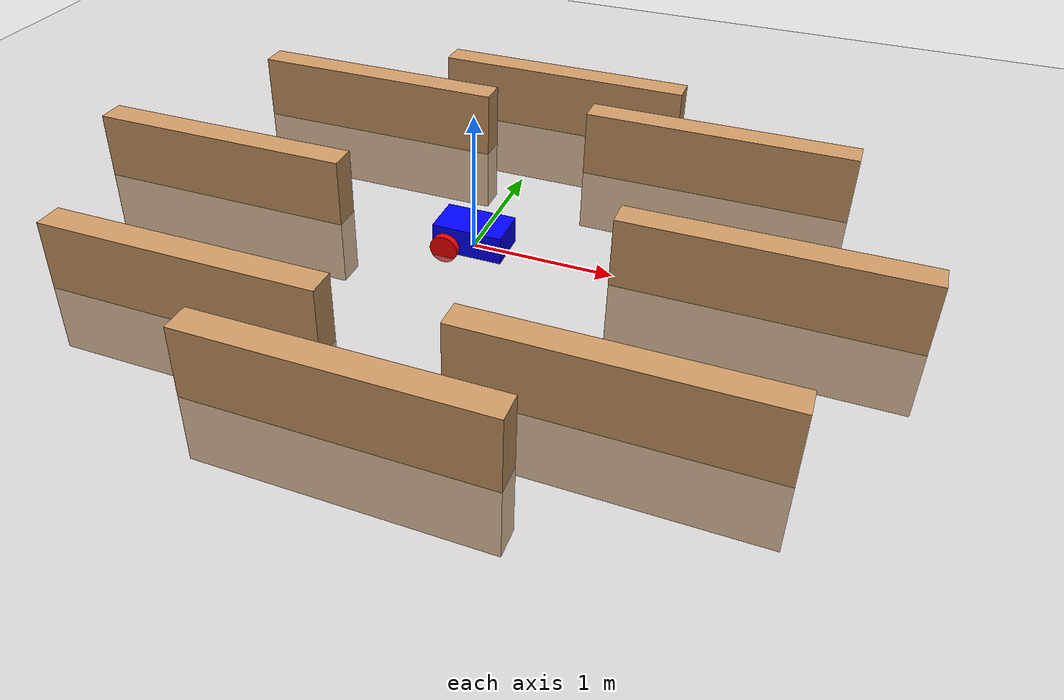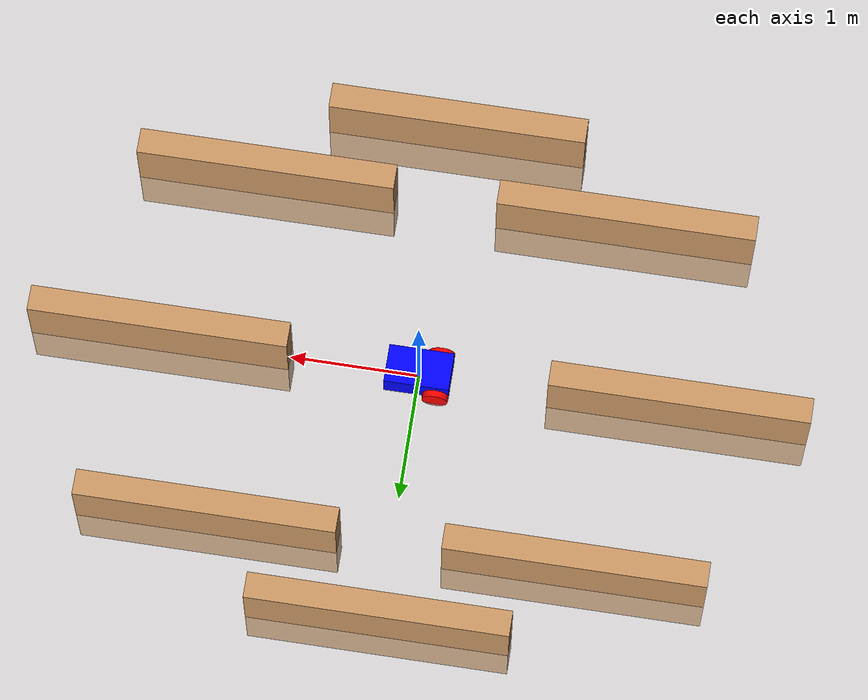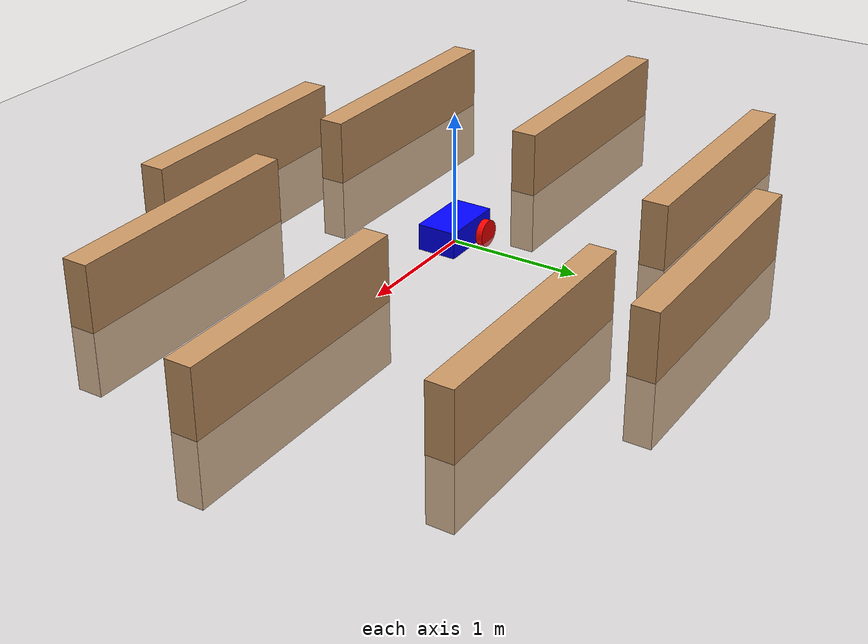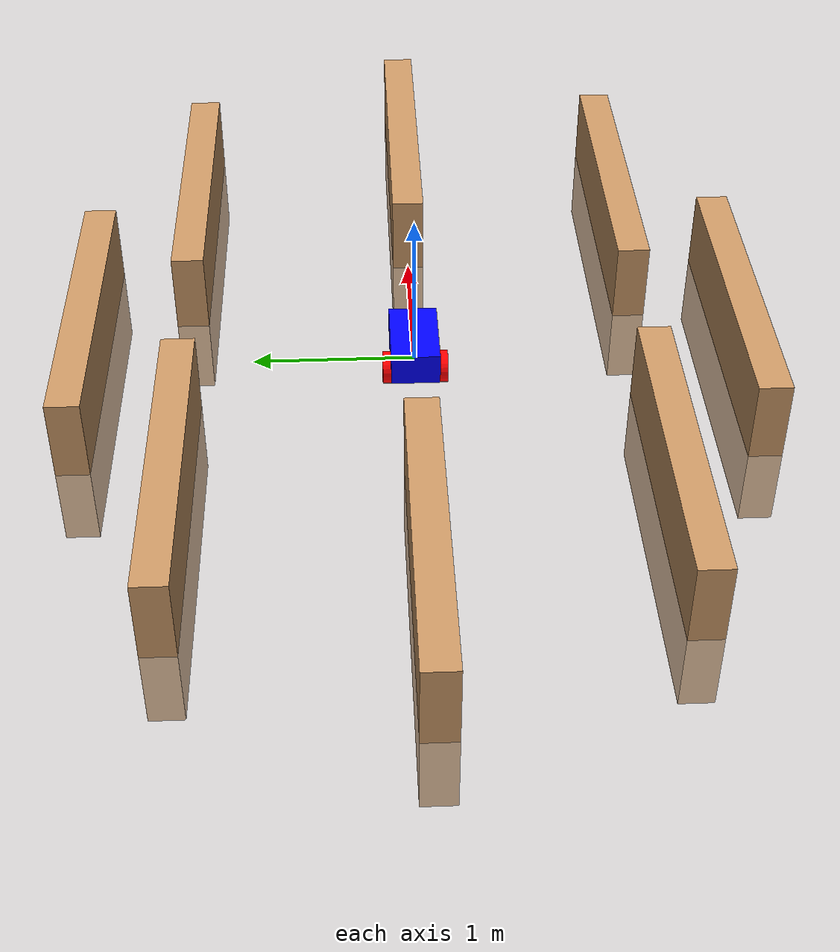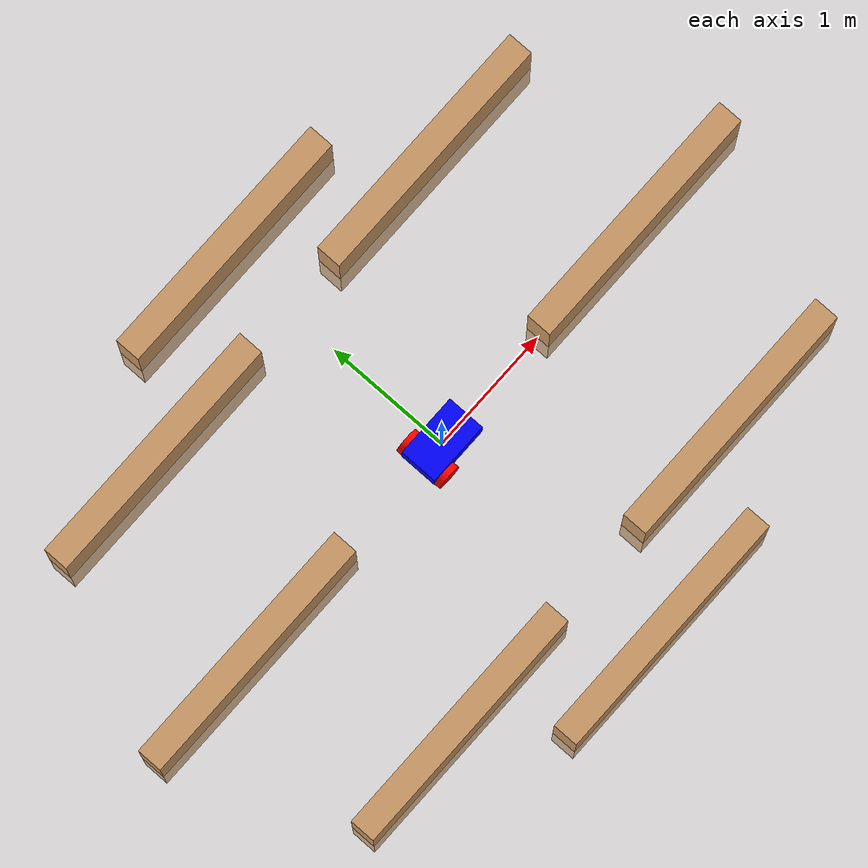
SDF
<?xml version="1.0"?>
<sdf version="1.6">

  <world name="default">
    <include>
      <uri>model://ground_plane</uri>
      <name>ground_plane</name>
      <pose>0 0 0 0 0 0</pose>
    </include>
  <include>
    <uri>model://simple_diff_bot</uri>
    <name>simple_diff_bot</name>
    <pose>0 0 0 0 0 0</pose>
  </include>
  <!-- Surrounding walls -->
  <include>
    <uri>model://wall</uri>
    <name>wall_north</name>
    <pose>0 2 0 0 0 0</pose>
  </include>
  <include>
    <uri>model://wall</uri>
    <name>wall_northeast</name>
    <pose>1.4 1.4 0 0 0 0</pose>
  </include>
  <include>
    <uri>model://wall</uri>
    <name>wall_east</name>
    <pose>2 0 0 0 0 0</pose>
  </include>
  <include>
    <uri>model://wall</uri>
    <name>wall_southeast</name>
    <pose>1.4 -1.4 0 0 0 0</pose>
  </include>
  <include>
    <uri>model://wall</uri>
    <name>wall_south</name>
    <pose>0 -2 0 0 0 0</pose>
  </include>
  <include>
    <uri>model://wall</uri>
    <name>wall_southwest</name>
    <pose>-1.4 -1.4 0 0 0 0</pose>
  </include>
  <include>
    <uri>model://wall</uri>
    <name>wall_west</name>
    <pose>-2 0 0 0 0 0</pose>
  </include>
  <include>
    <uri>model://wall</uri>
    <name>wall_northwest</name>
    <pose>-1.4 1.4 0 0 0 0</pose>
  </include>

  </world>
</sdf>

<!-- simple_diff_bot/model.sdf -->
<sdf version="1.6">
  <model name="simple_diff_bot">
    <link name="chassis">
      <pose>0 0 0.1 0 0 0</pose>
      <inertial>
        <mass>5.0</mass>
        <inertia>
          <ixx>1</ixx>
          <iyy>1</iyy>
          <izz>1</izz>
        </inertia>
      </inertial>
      <collision name="collision">
        <geometry>
          <box>
            <size>0.5 0.3 0.2</size>
          </box>
        </geometry>
      </collision>
      <visual name="visual">
        <geometry>
          <box>
            <size>0.5 0.3 0.2</size>
          </box>
        </geometry>
        <material>
          <ambient>0 0 1 1</ambient>
          <diffuse>0 0 1 1</diffuse>
        </material>
      </visual>
      <sensor name="lidar" type="gpu_ray">
        <pose>0 0 0.1 0 0 0</pose>
        <update_rate>10</update_rate>
        <ray>
          <scan>
            <horizontal>
              <samples>360</samples>
              <resolution>1</resolution>

              <min_angle>-3.14159</min_angle>
              <max_angle>3.14159</max_angle>
            </horizontal>
          </scan>
          <range>
            <min>0.1</min>
            <max>10.0</max>
          </range>
        </ray>
      </sensor>
    </link>

    <link name="left_wheel">
      <pose>-0.15 0.175 0.05 -1.5708 0 0</pose>
      <collision name="collision">
        <geometry>
          <cylinder>
            <radius>0.1</radius>
            <length>0.05</length>
          </cylinder>
        </geometry>
      </collision>
      <visual name="visual">
        <geometry>
          <cylinder>
            <radius>0.1</radius>
            <length>0.05</length>
          </cylinder>
        </geometry>
        <material>
          <ambient>1 0 0 1</ambient>
          <diffuse>1 0 0 1</diffuse>
        </material>
      </visual>
    </link>

    <link name="right_wheel">
      <pose>-0.15 -0.175 0.05 -1.5708 0 0</pose>
      <collision name="collision">
        <geometry>
          <cylinder>
            <radius>0.1</radius>
            <length>0.05</length>
          </cylinder>
        </geometry>
      </collision>
      <visual name="visual">
        <geometry>
          <cylinder>
            <radius>0.1</radius>
            <length>0.05</length>
          </cylinder>
        </geometry>
        <material>
          <ambient>1 0 0 1</ambient>
          <diffuse>1 0 0 1</diffuse>
        </material>
      </visual>
    </link>

    <link name="caster">
      <pose>0.2 0 0.02 0 0 0</pose>
      <collision name="collision">
        <geometry>
          <sphere>
            <radius>0.02</radius>
          </sphere>
        </geometry>
      </collision>
      <visual name="visual">
        <geometry>
          <sphere>
            <radius>0.02</radius>
          </sphere>
        </geometry>
      </visual>
    </link>

    <joint name="left_wheel_joint" type="revolute">
      <parent>chassis</parent>
      <child>left_wheel</child>
      <pose>-0.15 0.15 0.05 -1.5708 0 0</pose>
      <axis>
        <xyz>0 1 0</xyz>
        <limit>
          <lower>-1e16</lower>
          <upper>1e16</upper>
        </limit>
        <dynamics>
          <damping>0.1</damping>
        </dynamics>
      </axis>
    </joint>

    <joint name="right_wheel_joint" type="revolute">
      <parent>chassis</parent>
      <child>right_wheel</child>
      <pose>-0.15 -0.15 0.05 -1.5708 0 0</pose>
      <axis>
        <xyz>0 1 0</xyz>
        <limit>
          <lower>-1e16</lower>
          <upper>1e16</upper>
        </limit>
        <dynamics>
          <damping>0.1</damping>
        </dynamics>
      </axis>
    </joint>

    <joint name="caster_joint" type="ball">
      <parent>chassis</parent>
      <child>caster</child>
      <pose>0.2 0 0.02 0 0 0</pose>
    </joint>

    <plugin name="diff_drive" filename="libignition-gazebo-diff-drive-system.so">
      <left_joint>left_wheel_joint</left_joint>
      <right_joint>right_wheel_joint</right_joint>
      <wheel_separation>0.3</wheel_separation>
      <wheel_radius>0.05</wheel_radius>
      <odom_publish_frequency>30</odom_publish_frequency>
      <topic>cmd_vel</topic>
    </plugin>
  </model>
</sdf>

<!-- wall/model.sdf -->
<sdf version="1.6">
  <model name="wall">
    <static>true</static>
    <link name="link">
      <collision name="collision">
        <geometry>
          <box>
            <size>2 0.1 1</size>
          </box>
        </geometry>
      </collision>
      <visual name="visual">
        <geometry>
          <box>
            <size>2 0.2 1</size>
          </box>
        </geometry>
        <material>
          <ambient>0.8 0.6 0.4 1</ambient>
          <diffuse>0.8 0.6 0.4 1</diffuse>
        </material>
      </visual>
    </link>
  </model>
</sdf>
